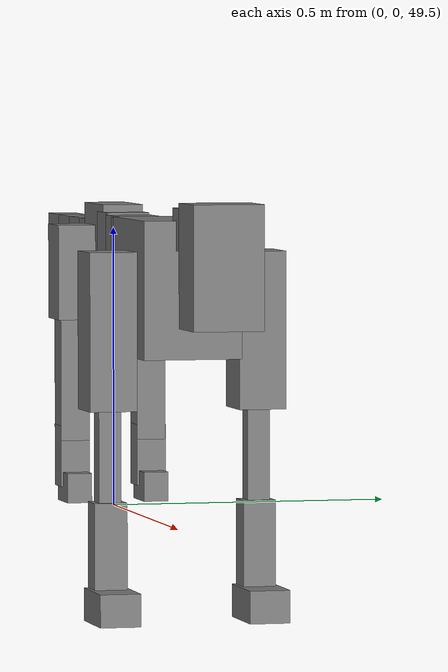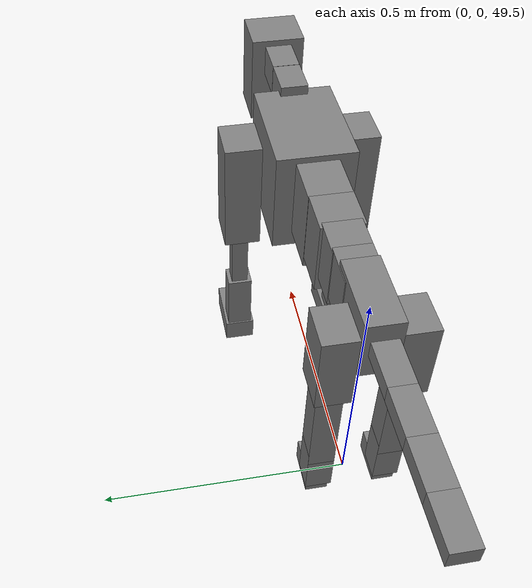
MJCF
<mujoco model="dog">

    <default>
        <joint armature="0.02" stiffness="1" damping="0.2" limited="true"/>
        <geom condim="3" friction="1 0.05 0.05" margin="0.01"/>
        <motor ctrllimited="true" ctrlrange="-1.0 1.0" forcelimited="true" gear="50"/>
    </default>

    <compiler inertiafromgeom="true" angle="radian"/>

    <option timestep="0.016" iterations="50" tolerance="1e-10" solver="Newton" jacobian="dense" cone="pyramidal"/>

    <size nconmax="20000" njmax="60000" nstack="5000000"/>
    <visual>
        <map force="0.1" zfar="30"/>
        <rgba haze="0.15 0.25 0.35 1"/>
        <quality shadowsize="2048"/>
        <global offwidth="800" offheight="800"/>
    </visual>

    <asset>
        <texture type="skybox" builtin="gradient" rgb1="0.3 0.5 0.7" rgb2="0 0 0" width="512" height="512"/>
        <texture name="texplane" type="2d" builtin="checker" rgb1=".2 .3 .4" rgb2=".1 0.15 0.2" width="512" height="512"
                 mark="cross" markrgb=".8 .8 .8"/>
        <texture name="texgeom" type="cube" builtin="flat" mark="cross" width="127" height="1278" rgb1="0.8 0.6 0.4"
                 rgb2="0.8 0.6 0.4" markrgb="1 1 1" random="0.01"/>

        <material name="matplane" reflectance="0.3" texture="texplane" texrepeat="1 1" texuniform="true"/>
        <material name="matgeom" texture="texgeom" texuniform="true" rgba="0.8 0.6 .4 1"/>
    </asset>

    <worldbody>
        <geom name="floor" pos="0 0 0" size="0 0 .25" type="plane" material="matplane" condim="3"/>

        <light directional="false" diffuse=".2 .2 .2" specular="0 0 0" pos="0 0 5" dir="0 0 -1" castshadow="false"/>
        <light mode="targetbodycom" target="torso" directional="false" diffuse=".8 .8 .8" specular="0.3 0.3 0.3"
               pos="0 0 4.0" dir="0 0 -1"/>

        <body name="root" pos="0 0 50">
            <freejoint name="root_1"/>
            <geom type="box" pos="0 0 -0.02" size="0.0774  0.0358  0.063" density="2030"/>

            <body name="spine1" pos="0.054 0 0">
                <joint name="spine1_y" axis="0 1 0" range="0 0.7" limited="true"/>
                <geom type="box" pos="0.02375 0 -0.03" size="0.04375  0.0375  0.05985" density="2030"/>

                <body name="spine2" pos="0.0612 0 0">
                    <joint name="spine2_y" axis="0 1 0" range="-0.15 0.15" limited="true"/>
                    <geom type="box" pos="0.03555  0  -0.04" size="0.04055  0.039  0.06615" density="2030"/>

                    <body name="spine3" pos="0.0730 0 0">
                        <joint name="spine3_y" axis="0 1 0" range="-0.15 0.15" limited="true"/>
                        <geom type="box" pos="0.03555  0  -0.057" size="0.04555  0.0445  0.081" density="2030"/>

                        <body name="spine4" pos="0.0780 0 0">
                            <joint name="spine4_y" axis="0 1 0" range="-0.15 0.15" limited="true"/>
                            <geom type="box" pos="0.05265  0  -0.07" size="0.05265  0.045  0.09135" density="2030"/>

                            <body name="torso" pos="0.1082 0 0">
                                <joint name="torso_y" axis="0 1 0" range="-0.15 0.15" limited="true"/>
                                <geom type="box" pos="0.11925  0  -0.085" size="0.11925  0.085  0.11745"
                                      density="2030"/>

                                <body name="neck1" pos="0.2160  0   0.0180">
                                    <joint name="neck1_y" axis="0 1 0" range="-1.2  -1" limited="true"/>
                                    <geom type="box" pos="0.0423  0  0" size="0.0423  0.03  0.036" density="2325"/>

                                    <body name="neck2" pos="0.0853  0  0">
                                        <joint name="neck2_y" axis="0 1 0" range="0.1  0" limited="true"/>
                                        <geom type="box" pos="0.0423  0  0" size="0.0423  0.03  0.036" density="2325"/>

                                        <body name="head" pos="0.0853  0  0">
                                            <joint name="head_y" axis="0 1 0" range="-0.3  -0.2" limited="true"/>
                                            <geom type="box" pos="0.0531  0  -0.055" size="0.0531  0.06  0.1044"
                                                  density="4030"/>

                                        </body>
                                    </body>
                                </body>

                                <body name="front_shoulder" pos="0.156  0   -0.0480">
                                    <joint name="front_shoulder_y" axis="0 1 0" range="-1 1.5" limited="true"/>
                                    <geom type="box" pos="0 0.13 -0.1081" size="0.0478  0.0408  0.1348" density="1158"/>
                                    <geom type="box" pos="0 -0.13 -0.1081" size="0.0478  0.0408  0.1348"
                                          density="1158"/>

                                    <body name="front_elbow" pos="0  0  -0.2162">
                                        <joint name="front_elbow_y" axis="0 1 0" range="-2 0" limited="true"/>
                                        <geom type="box" pos="0 0.13 -0.0983" size="0.0188  0.0192  0.0983"
                                              density="1081"/>
                                        <geom type="box" pos="0 -0.13 -0.0983" size="0.0188  0.0192  0.0983"
                                              density="1081"/>

                                        <body name="front_wrist" pos="0  0  -0.1966">
                                            <joint name="front_wrist_y" axis="0 1 0" range="-0.2 0" limited="true"/>
                                            <geom type="box" pos="0 0.13 -0.0748" size="0.0256  0.0285  0.0880"
                                                  density="1664"/>
                                            <geom type="box" pos="0 -0.13 -0.0748" size="0.0256  0.0285  0.0880"
                                                  density="1664"/>

                                            <body name="front_finger_end" pos="0  0  -0.1496">
                                                <joint name="front_finger_y" axis="0 1 0" range="-0.4 1"
                                                       limited="true"/>
                                                <geom type="box" pos="0.0350  0.13  -0.0131"
                                                      size="0.0642  0.0350  0.0281" density="1515"/>
                                                <geom type="box" pos="0.0350  -0.13  -0.0131"
                                                      size="0.0642  0.0350  0.0281" density="1515"/>

                                            </body>

                                        </body>
                                    </body>
                                </body>

                            </body>
                        </body>
                    </body>
                </body>
            </body>

            <body name="back_hip" pos="-0.03 0 -0.018">
                <joint name="back_hip_y" axis="0 1 0" range="-1.5 0.3" limited="true"/>
                <geom type="box" pos="0 0.07 -0.0620" size="0.0431  0.0338  0.0848" density="1154"/>
                <geom type="box" pos="0 -0.07 -0.0620" size="0.0431  0.0338  0.0848" density="1154"/>

                <body name="back_knee" pos="0  0  -0.1240">
                    <joint name="back_knee_y" axis="0 1 0" range="0 2.8" limited="true"/>
                    <geom type="box" pos="0 0.07 -0.1125" size="0.0263  0.0260  0.1280" density="1227"/>
                    <geom type="box" pos="0 -0.07 -0.1125" size="0.0263  0.0260  0.1280" density="1227"/>

                    <body name="back_ankle" pos="0  0  -0.2249">
                        <joint name="back_ankle_y" axis="0 1 0" range="-2.2 0" limited="true"/>
                        <geom type="box" pos="0 0.07 -0.0436" size="0.0262  0.0262  0.0549" density="1284"/>
                        <geom type="box" pos="0 -0.07 -0.0436" size="0.0262  0.0262  0.0549" density="1284"/>

                        <body name="back_toe_end" pos="0  0  -0.0873">
                            <joint name="back_toe_y" axis="0 1 0" range="-0.4 1" limited="true"/>
                            <geom type="box" pos="0.0222  0.07  -0.0113" size="0.0407  0.0222  0.0263" density="1515"/>
                            <geom type="box" pos="0.0222  -0.07  -0.0113" size="0.0407  0.0222  0.0263" density="1515"/>

                        </body>
                    </body>
                </body>
            </body>

            <body name="tail1" pos="-0.074 0 -0.006">
                <joint name="tail1_y" axis="0 1 0" range="-0.2 0.2" limited="true"/>
                <geom type="box" pos="-0.0536  0  0" size="0.045  0.025  0.0175" density="1587"/>

                <body name="tail2" pos="-0.09 0 0">
                    <joint name="tail2_y" axis="0 1 0" range="-0.2 0.2" limited="true"/>
                    <geom type="box" pos="-0.0536  0  0" size="0.045  0.025  0.0175" density="1587"/>

                    <body name="tail3" pos="-0.09 0 0">
                        <joint name="tail3_y" axis="0 1 0" range="-0.2 0.2" limited="true"/>
                        <geom type="box" pos="-0.0536  0  0" size="0.045  0.025  0.0175" density="1587"/>

                        <body name="tail4" pos="-0.09 0 0">
                            <joint name="tail4_y" axis="0 1 0" range="-0.2 0.2" limited="true"/>
                            <geom type="box" pos="-0.0536  0  0" size="0.045  0.025  0.0175" density="1587"/>

                        </body>
                    </body>
                </body>
            </body>
        </body>
    </worldbody>

    <actuator>
        <motor joint="spine1_y" forcerange="-150 150     "/>
        <motor joint="spine2_y" forcerange="-150 150     "/>
        <motor joint="spine3_y" forcerange="-150 150     "/>
        <motor joint="spine4_y" forcerange="-150 150     "/>
        <motor joint="torso_y" forcerange="-150 150     "/>
        <motor joint="neck1_y" forcerange="-100 100       "/>
        <motor joint="neck2_y" forcerange="-100 100       "/>
        <motor joint="head_y" forcerange="-150 150       "/>
        <motor joint="front_shoulder_y" forcerange="-193.74 178.49"/>
        <motor joint="front_elbow_y" forcerange="-119.53 120.44"/>
        <motor joint="front_wrist_y" forcerange="-149.11 78.86"/>
        <motor joint="front_finger_y" forcerange="-60.41 86.30"/>
        <motor joint="back_hip_y" forcerange="-258.16 392.09"/>
        <motor joint="back_knee_y" forcerange="-362.09 215.61"/>
        <motor joint="back_angle_y" forcerange="-233.28 85.18"/>
        <motor joint="back_toe_y" forcerange="-61.28 36.11"/>
        <motor joint="tail1_y" forcerange="-50 50     "/>
        <motor joint="tail2_y" forcerange="-50 50     "/>
        <motor joint="tail3_y" forcerange="-50 50     "/>
        <motor joint="tail4_y" forcerange="-50 50     "/>
    </actuator>
</mujoco>
